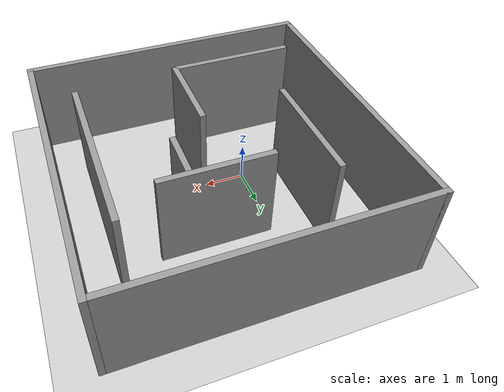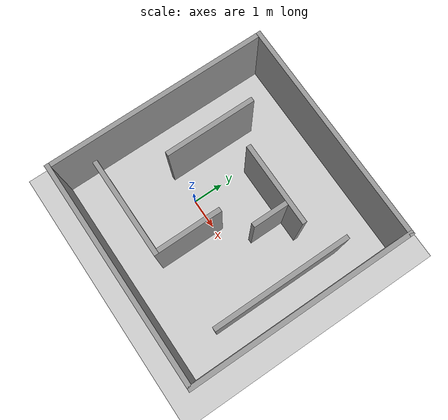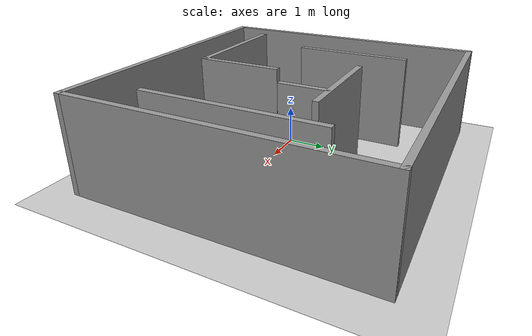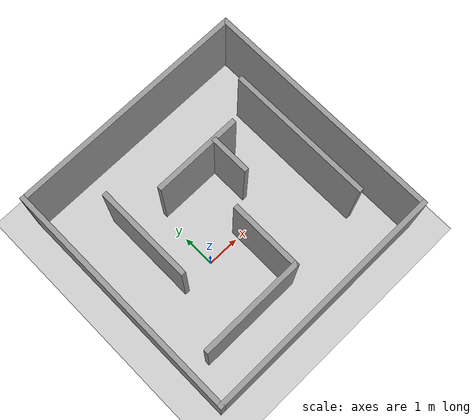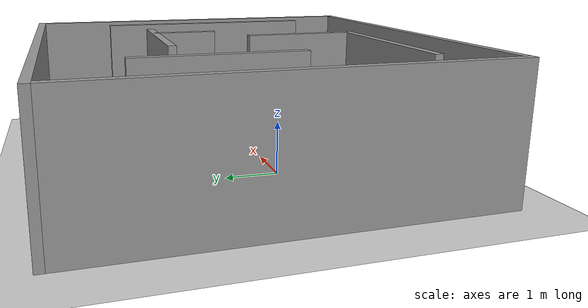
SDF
<sdf version="1.6">
 <world name="default">
  <light name="sun" type="directional">
   <pose>0 0 10 0 -0 0</pose>
   <diffuse>0.8 0.8 0.8 1</diffuse>
   <specular>0.2 0.2 0.2 1</specular>
   <attenuation>
    <range>1000</range>
    <constant>0.9</constant>
    <linear>0.01</linear>
    <quadratic>0.001</quadratic>
   </attenuation>
   <direction>-0.5 0.1 -0.9</direction>
  </light>
  <model name="ground_plane">
   <static>1</static>
   <link name="link">
    <collision name="collision">
     <geometry><plane><normal>0 0 1</normal><size>100 100</size></plane></geometry>
     <surface><friction><ode><mu>100</mu><mu2>50</mu2></ode></friction></surface>
    </collision>
    <visual name="visual">
     <cast_shadows>0</cast_shadows>
     <geometry><plane><normal>0 0 1</normal><size>100 100</size></plane></geometry>
     <material>
      <script><uri>file://media/materials/scripts/gazebo.material</uri><name>Gazebo/Grey</name></script>
     </material>
    </visual>
   </link>
  </model>
  <gravity>0 0 -9.8</gravity>
  <magnetic_field>6e-06 2.3e-05 -4.2e-05</magnetic_field>
  <atmosphere type="adiabatic"/>
  <physics name="default_physics" default="0" type="ode">
   <max_step_size>0.001</max_step_size>
   <real_time_factor>1</real_time_factor>
   <real_time_update_rate>1000</real_time_update_rate>
  </physics>
  <scene><ambient>0.4 0.4 0.4 1</ambient><background>0.7 0.7 0.7 1</background><shadows>1</shadows></scene>
  <audio><device>default</device></audio>
  <spherical_coordinates>
   <surface_model>EARTH_WGS84</surface_model>
   <latitude_deg>0</latitude_deg>
   <longitude_deg>0</longitude_deg>
   <elevation>0</elevation>
   <heading_deg>0</heading_deg>
  </spherical_coordinates>
  <model name="Untitled_0">
   <pose>1.02753 0.53463 0 0 -0 0</pose>
   <link name="Wall_0">
    <collision name="Wall_0_Collision">
     <geometry><box><size>7.5 0.15 2.5</size></box></geometry>
     <pose>0 0 1.25 0 -0 0</pose>
    </collision>
    <visual name="Wall_0_Visual">
     <pose>0 0 1.25 0 -0 0</pose>
     <geometry><box><size>7.5 0.15 2.5</size></box></geometry>
     <material>
      <script><uri>file://media/materials/scripts/gazebo.material</uri><name>Gazebo/Grey</name></script>
      <ambient>1 1 1 1</ambient>
     </material>
     <meta><layer>0</layer></meta>
    </visual>
    <pose>-3.675 0 0 0 -0 -1.5708</pose>
   </link>
   <link name="Wall_12">
    <collision name="Wall_12_Collision">
     <geometry><box><size>3.25 0.15 2.5</size></box></geometry>
     <pose>0 0 1.25 0 -0 0</pose>
    </collision>
    <visual name="Wall_12_Visual">
     <pose>0 0 1.25 0 -0 0</pose>
     <geometry><box><size>3.25 0.15 2.5</size></box></geometry>
     <material>
      <script><uri>file://media/materials/scripts/gazebo.material</uri><name>Gazebo/Grey</name></script>
      <ambient>1 1 1 1</ambient>
     </material>
     <meta><layer>0</layer></meta>
    </visual>
    <pose>-1.42665 -2.4865 0 0 -0 0</pose>
   </link>
   <link name="Wall_13">
    <collision name="Wall_13_Collision">
     <geometry><box><size>2.25 0.15 2.5</size></box></geometry>
     <pose>0 0 1.25 0 -0 0</pose>
    </collision>
    <visual name="Wall_13_Visual">
     <pose>0 0 1.25 0 -0 0</pose>
     <geometry><box><size>2.25 0.15 2.5</size></box></geometry>
     <material>
      <script><uri>file://media/materials/scripts/gazebo.material</uri><name>Gazebo/Grey</name></script>
      <ambient>1 1 1 1</ambient>
     </material>
     <meta><layer>0</layer></meta>
    </visual>
    <pose>0.123349 -1.4365 0 0 -0 1.5708</pose>
   </link>
   <link name="Wall_15">
    <collision name="Wall_15_Collision">
     <geometry><box><size>4.5 0.15 2.5</size></box></geometry>
     <pose>0 0 1.25 0 -0 0</pose>
    </collision>
    <visual name="Wall_15_Visual">
     <pose>0 0 1.25 0 -0 0</pose>
     <geometry><box><size>4.5 0.15 2.5</size></box></geometry>
     <material>
      <script><uri>file://media/materials/scripts/gazebo.material</uri><name>Gazebo/Grey</name></script>
      <ambient>1 1 1 1</ambient>
     </material>
     <meta><layer>0</layer></meta>
    </visual>
    <pose>2.76335 -0.071495 0 0 -0 -1.5708</pose>
   </link>
   <link name="Wall_18">
    <collision name="Wall_18_Collision">
     <geometry><box><size>1.25 0.15 2.5</size></box></geometry>
     <pose>0 0 1.25 0 -0 0</pose>
    </collision>
    <visual name="Wall_18_Visual">
     <pose>0 0 1.25 0 -0 0</pose>
     <geometry><box><size>1.25 0.15 2.5</size></box></geometry>
     <material>
      <script><uri>file://media/materials/scripts/gazebo.material</uri><name>Gazebo/Grey</name></script>
      <ambient>1 1 1 1</ambient>
     </material>
     <meta><layer>0</layer></meta>
    </visual>
    <pose>1.0185 0.79601 0 0 -0 -1.5708</pose>
   </link>
   <link name="Wall_2">
    <collision name="Wall_2_Collision">
     <geometry><box><size>7.5 0.15 2.5</size></box></geometry>
     <pose>0 0 1.25 0 -0 0</pose>
    </collision>
    <visual name="Wall_2_Visual">
     <pose>0 0 1.25 0 -0 0</pose>
     <geometry><box><size>7.5 0.15 2.5</size></box></geometry>
     <material>
      <script><uri>file://media/materials/scripts/gazebo.material</uri><name>Gazebo/Grey</name></script>
      <ambient>1 1 1 1</ambient>
     </material>
     <meta><layer>0</layer></meta>
    </visual>
    <pose>-0 3.675 0 0 -0 0</pose>
   </link>
   <link name="Wall_3">
    <collision name="Wall_3_Collision">
     <geometry><box><size>7.5 0.15 2.5</size></box></geometry>
     <pose>0 0 1.25 0 -0 0</pose>
    </collision>
    <visual name="Wall_3_Visual">
     <pose>0 0 1.25 0 -0 0</pose>
     <geometry><box><size>7.5 0.15 2.5</size></box></geometry>
     <material>
      <script><uri>file://media/materials/scripts/gazebo.material</uri><name>Gazebo/Grey</name></script>
      <ambient>1 1 1 1</ambient>
     </material>
     <meta><layer>0</layer></meta>
    </visual>
    <pose>3.675 0 0 0 -0 -1.5708</pose>
   </link>
   <link name="Wall_4">
    <collision name="Wall_4_Collision">
     <geometry><box><size>7.5 0.15 2.5</size></box></geometry>
     <pose>0 0 1.25 0 -0 0</pose>
    </collision>
    <visual name="Wall_4_Visual">
     <pose>0 0 1.25 0 -0 0</pose>
     <geometry><box><size>7.5 0.15 2.5</size></box></geometry>
     <material>
      <script><uri>file://media/materials/scripts/gazebo.material</uri><name>Gazebo/Grey</name></script>
      <ambient>1 1 1 1</ambient>
     </material>
     <meta><layer>0</layer></meta>
    </visual>
    <pose>-0 -3.675 0 0 -0 3.14159</pose>
   </link>
   <link name="Wall_6">
    <collision name="Wall_6_Collision">
     <geometry><box><size>3 0.15 2.5</size></box></geometry>
     <pose>0 0 1.25 0 -0 0</pose>
    </collision>
    <visual name="Wall_6_Visual">
     <pose>0 0 1.25 0 -0 0</pose>
     <geometry><box><size>3 0.15 2.5</size></box></geometry>
     <material>
      <script><uri>file://media/materials/scripts/gazebo.material</uri><name>Gazebo/Grey</name></script>
      <ambient>1 1 1 1</ambient>
     </material>
     <meta><layer>0</layer></meta>
    </visual>
    <pose>-2.07665 0.818505 0 0 -0 -1.5708</pose>
   </link>
   <link name="Wall_8">
    <collision name="Wall_8_Collision">
     <geometry><box><size>2.75 0.15 2.5</size></box></geometry>
     <pose>0 0 1.25 0 -0 0</pose>
    </collision>
    <visual name="Wall_8_Visual">
     <pose>0 0 1.25 0 -0 0</pose>
     <geometry><box><size>2.75 0.15 2.5</size></box></geometry>
     <material>
      <script><uri>file://media/materials/scripts/gazebo.material</uri><name>Gazebo/Grey</name></script>
      <ambient>1 1 1 1</ambient>
     </material>
     <meta><layer>0</layer></meta>
    </visual>
    <pose>0.403349 1.40351 0 0 -0 0</pose>
   </link>
   <static>1</static>
  </model>
 </world>
</sdf>
